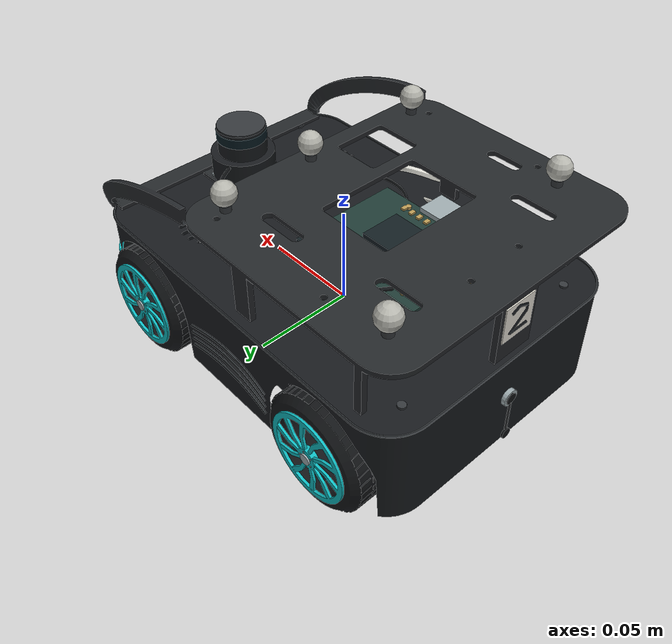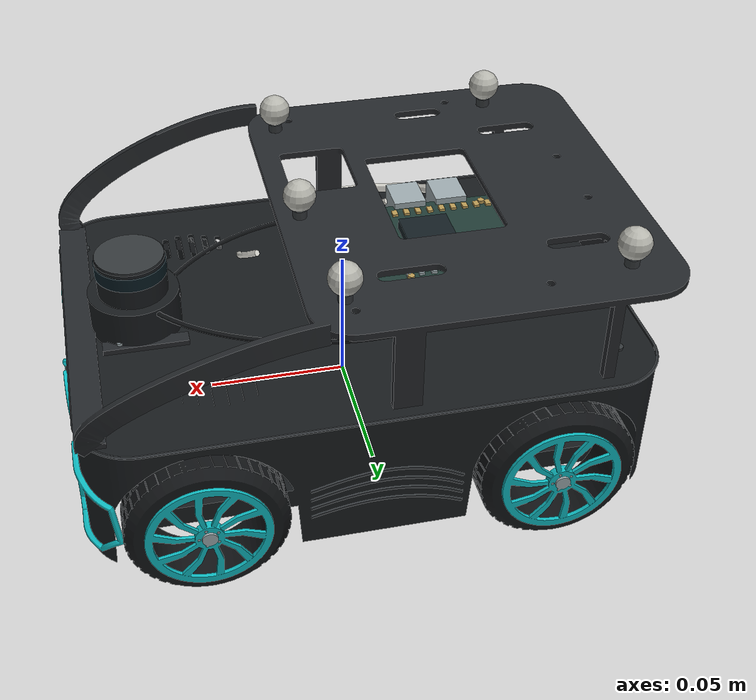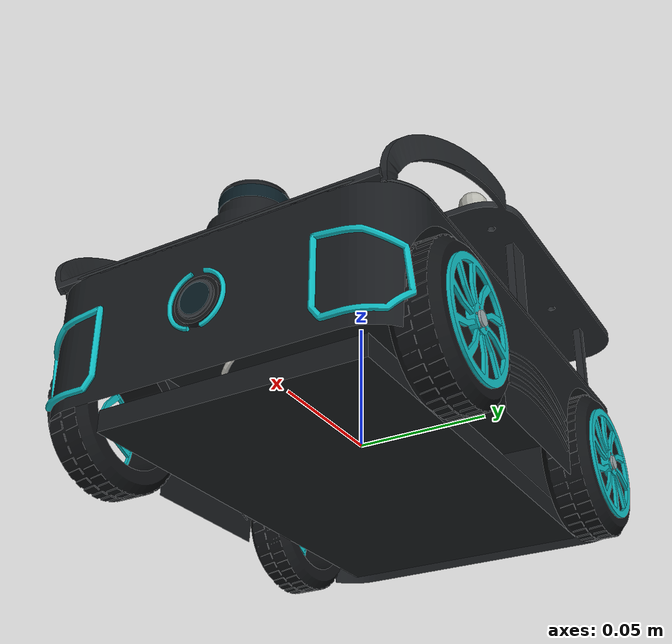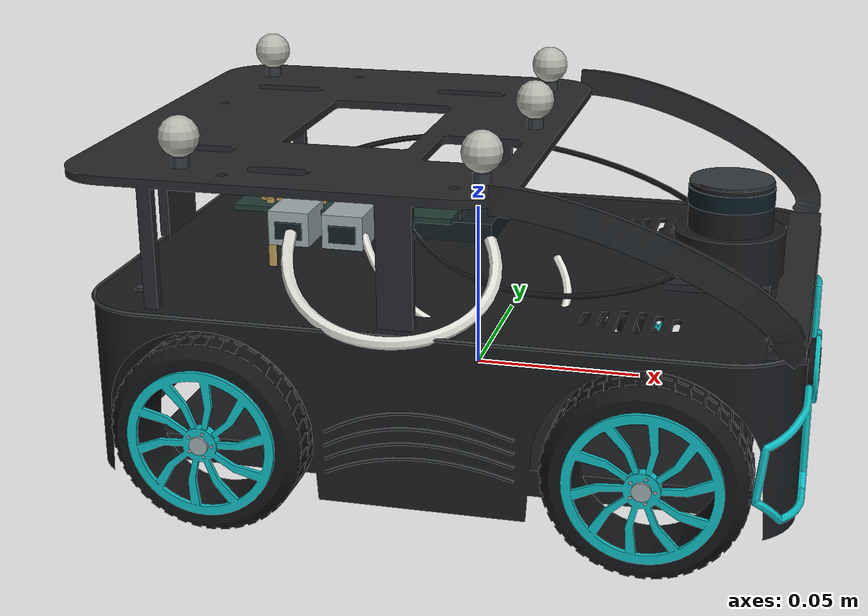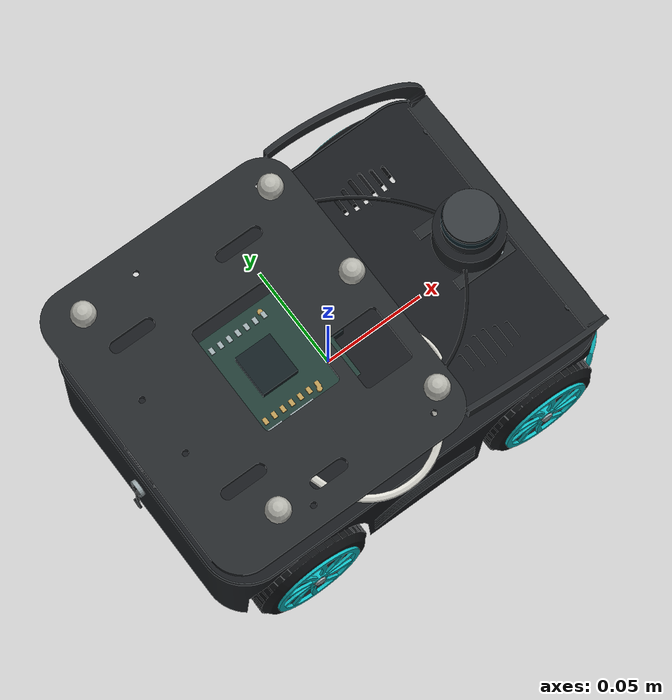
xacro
<?xml version='1.0' encoding='utf-8'?>
<robot name="dongfeng_car" xmlns:xacro="http://www.ros.org/wiki/xacro">
  <xacro:arg name="driving_mode" default="fast"/>
  <xacro:property name="drive_limit" value="0.40"/>
  <!--Generated by scripts/generate_vehicle.py. X forward, Y left, Z up. Camera, lidar and IMU publish through Gazebo Sensors.-->
  <link name="base_link">
    <visual name="base_shell">
      <origin xyz="0 0 0" rpy="0 0 0" />
      <geometry>
        <mesh filename="package://dongfeng_description/meshes/base_shell.obj" />
      </geometry>
      <material name="vehicle_shell">
        <color rgba="0.0901960784 0.101960784 0.11372549 1" />
      </material>
    </visual>
    <visual name="base_edge">
      <origin xyz="0 0 0" rpy="0 0 0" />
      <geometry>
        <mesh filename="package://dongfeng_description/meshes/base_edge.obj" />
      </geometry>
      <material name="vehicle_edge">
        <color rgba="0.203921569 0.219607843 0.231372549 1" />
      </material>
    </visual>
    <visual name="base_teal">
      <origin xyz="0 0 0" rpy="0 0 0" />
      <geometry>
        <mesh filename="package://dongfeng_description/meshes/base_teal.obj" />
      </geometry>
      <material name="vehicle_teal">
        <color rgba="0.0549019608 0.729411765 0.752941176 1" />
      </material>
    </visual>
    <visual name="base_silver">
      <origin xyz="0 0 0" rpy="0 0 0" />
      <geometry>
        <mesh filename="package://dongfeng_description/meshes/base_silver.obj" />
      </geometry>
      <material name="vehicle_silver">
        <color rgba="0.611764706 0.662745098 0.678431373 1" />
      </material>
    </visual>
    <visual name="base_rubber">
      <origin xyz="0 0 0" rpy="0 0 0" />
      <geometry>
        <mesh filename="package://dongfeng_description/meshes/base_rubber.obj" />
      </geometry>
      <material name="vehicle_rubber">
        <color rgba="0.0666666667 0.0745098039 0.0823529412 1" />
      </material>
    </visual>
    <visual name="base_plate">
      <origin xyz="0 0 0" rpy="0 0 0" />
      <geometry>
        <mesh filename="package://dongfeng_description/meshes/base_plate.obj" />
      </geometry>
      <material name="vehicle_plate">
        <color rgba="0.141176471 0.152941176 0.164705882 1" />
      </material>
    </visual>
    <visual name="base_marker">
      <origin xyz="0 0 0" rpy="0 0 0" />
      <geometry>
        <mesh filename="package://dongfeng_description/meshes/base_marker.obj" />
      </geometry>
      <material name="vehicle_marker">
        <color rgba="0.709803922 0.709803922 0.678431373 1" />
      </material>
    </visual>
    <visual name="base_board">
      <origin xyz="0 0 0" rpy="0 0 0" />
      <geometry>
        <mesh filename="package://dongfeng_description/meshes/base_board.obj" />
      </geometry>
      <material name="vehicle_board">
        <color rgba="0.125490196 0.231372549 0.207843137 1" />
      </material>
    </visual>
    <visual name="base_chip">
      <origin xyz="0 0 0" rpy="0 0 0" />
      <geometry>
        <mesh filename="package://dongfeng_description/meshes/base_chip.obj" />
      </geometry>
      <material name="vehicle_chip">
        <color rgba="0.0745098039 0.117647059 0.133333333 1" />
      </material>
    </visual>
    <visual name="base_gold">
      <origin xyz="0 0 0" rpy="0 0 0" />
      <geometry>
        <mesh filename="package://dongfeng_description/meshes/base_gold.obj" />
      </geometry>
      <material name="vehicle_gold">
        <color rgba="0.725490196 0.6 0.329411765 1" />
      </material>
    </visual>
    <visual name="base_cable_white">
      <origin xyz="0 0 0" rpy="0 0 0" />
      <geometry>
        <mesh filename="package://dongfeng_description/meshes/base_cable_white.obj" />
      </geometry>
      <material name="vehicle_cable_white">
        <color rgba="0.866666667 0.862745098 0.831372549 1" />
      </material>
    </visual>
    <visual name="base_label">
      <origin xyz="0 0 0" rpy="0 0 0" />
      <geometry>
        <mesh filename="package://dongfeng_description/meshes/base_label.obj" />
      </geometry>
      <material name="vehicle_label">
        <color rgba="0.901960784 0.88627451 0.839215686 1" />
      </material>
    </visual>
    <collision name="body_envelope">
      <origin xyz="0 0 0.009" rpy="0 0 0" />
      <geometry>
        <box size="0.194 0.136 0.05" />
      </geometry>
    </collision>
    <collision name="upper_platform">
      <origin xyz="-0.039 0 0.07275" rpy="0 0 0" />
      <geometry>
        <box size="0.126 0.146 0.0025" />
      </geometry>
    </collision>
    <collision name="support_-1">
      <origin xyz="-0.008 -0.063 0.053" rpy="0 0 0" />
      <geometry>
        <box size="0.01 0.003 0.038" />
      </geometry>
    </collision>
    <collision name="support_1">
      <origin xyz="-0.008 0.063 0.053" rpy="0 0 0" />
      <geometry>
        <box size="0.01 0.003 0.038" />
      </geometry>
    </collision>
    <inertial>
      <origin xyz="0 0 0.021" rpy="0 0 0" />
      <mass value="1.2" />
      <inertia ixx="0.0029600000000000004" ixy="0" ixz="0" iyy="0.005000000000000001" iyz="0" izz="0.005960000000000001" />
    </inertial>
  </link>
  <link name="wheel_left_link">
    <visual name="wheel_left_rubber">
      <origin xyz="0 0 0" rpy="0 0 0" />
      <geometry>
        <mesh filename="package://dongfeng_description/meshes/wheel_left_rubber.obj" />
      </geometry>
      <material name="vehicle_rubber">
        <color rgba="0.0666666667 0.0745098039 0.0823529412 1" />
      </material>
    </visual>
    <visual name="wheel_left_teal">
      <origin xyz="0 0 0" rpy="0 0 0" />
      <geometry>
        <mesh filename="package://dongfeng_description/meshes/wheel_left_teal.obj" />
      </geometry>
      <material name="vehicle_teal">
        <color rgba="0.0549019608 0.729411765 0.752941176 1" />
      </material>
    </visual>
    <visual name="wheel_left_silver">
      <origin xyz="0 0 0" rpy="0 0 0" />
      <geometry>
        <mesh filename="package://dongfeng_description/meshes/wheel_left_silver.obj" />
      </geometry>
      <material name="vehicle_silver">
        <color rgba="0.611764706 0.662745098 0.678431373 1" />
      </material>
    </visual>
    <collision>
      <origin xyz="0 0 0" rpy="-1.57079633 0 0" />
      <geometry>
        <cylinder radius="0.028" length="0.018" />
      </geometry>
    </collision>
    <inertial>
      <origin xyz="0 0 0" rpy="0 0 0" />
      <mass value="0.06" />
      <inertia ixx="1.3380000000000002e-05" ixy="0" ixz="0" iyy="2.3520000000000002e-05" iyz="0" izz="1.3380000000000002e-05" />
    </inertial>
  </link>
  <joint name="wheel_left_joint" type="continuous">
    <parent link="base_link" />
    <child link="wheel_left_link" />
    <origin xyz="-0.061 0.066 0" rpy="0 0 0" />
    <axis xyz="0 1 0" />
  </joint>
  <gazebo reference="wheel_left_link">
    <mu1>1.0</mu1>
    <mu2>1.0</mu2>
    <kp>1000000</kp>
    <kd>100</kd>
    <fdir1>0 0 1</fdir1>
  </gazebo>
  <link name="wheel_left_front_link">
    <visual name="wheel_left_rubber">
      <origin xyz="0 0 0" rpy="0 0 0" />
      <geometry>
        <mesh filename="package://dongfeng_description/meshes/wheel_left_rubber.obj" />
      </geometry>
      <material name="vehicle_rubber">
        <color rgba="0.0666666667 0.0745098039 0.0823529412 1" />
      </material>
    </visual>
    <visual name="wheel_left_teal">
      <origin xyz="0 0 0" rpy="0 0 0" />
      <geometry>
        <mesh filename="package://dongfeng_description/meshes/wheel_left_teal.obj" />
      </geometry>
      <material name="vehicle_teal">
        <color rgba="0.0549019608 0.729411765 0.752941176 1" />
      </material>
    </visual>
    <visual name="wheel_left_silver">
      <origin xyz="0 0 0" rpy="0 0 0" />
      <geometry>
        <mesh filename="package://dongfeng_description/meshes/wheel_left_silver.obj" />
      </geometry>
      <material name="vehicle_silver">
        <color rgba="0.611764706 0.662745098 0.678431373 1" />
      </material>
    </visual>
    <collision>
      <origin xyz="0 0 0" rpy="-1.57079633 0 0" />
      <geometry>
        <cylinder radius="0.028" length="0.018" />
      </geometry>
    </collision>
    <inertial>
      <origin xyz="0 0 0" rpy="0 0 0" />
      <mass value="0.06" />
      <inertia ixx="1.3380000000000002e-05" ixy="0" ixz="0" iyy="2.3520000000000002e-05" iyz="0" izz="1.3380000000000002e-05" />
    </inertial>
  </link>
  <joint name="wheel_left_front_joint" type="continuous">
    <parent link="base_link" />
    <child link="wheel_left_front_link" />
    <origin xyz="0.061 0.066 0" rpy="0 0 0" />
    <axis xyz="0 1 0" />
  </joint>
  <gazebo reference="wheel_left_front_link">
    <mu1>1.0</mu1>
    <mu2>1.0</mu2>
    <kp>1000000</kp>
    <kd>100</kd>
    <fdir1>0 0 1</fdir1>
  </gazebo>
  <link name="wheel_right_link">
    <visual name="wheel_right_rubber">
      <origin xyz="0 0 0" rpy="0 0 0" />
      <geometry>
        <mesh filename="package://dongfeng_description/meshes/wheel_right_rubber.obj" />
      </geometry>
      <material name="vehicle_rubber">
        <color rgba="0.0666666667 0.0745098039 0.0823529412 1" />
      </material>
    </visual>
    <visual name="wheel_right_teal">
      <origin xyz="0 0 0" rpy="0 0 0" />
      <geometry>
        <mesh filename="package://dongfeng_description/meshes/wheel_right_teal.obj" />
      </geometry>
      <material name="vehicle_teal">
        <color rgba="0.0549019608 0.729411765 0.752941176 1" />
      </material>
    </visual>
    <visual name="wheel_right_silver">
      <origin xyz="0 0 0" rpy="0 0 0" />
      <geometry>
        <mesh filename="package://dongfeng_description/meshes/wheel_right_silver.obj" />
      </geometry>
      <material name="vehicle_silver">
        <color rgba="0.611764706 0.662745098 0.678431373 1" />
      </material>
    </visual>
    <collision>
      <origin xyz="0 0 0" rpy="-1.57079633 0 0" />
      <geometry>
        <cylinder radius="0.028" length="0.018" />
      </geometry>
    </collision>
    <inertial>
      <origin xyz="0 0 0" rpy="0 0 0" />
      <mass value="0.06" />
      <inertia ixx="1.3380000000000002e-05" ixy="0" ixz="0" iyy="2.3520000000000002e-05" iyz="0" izz="1.3380000000000002e-05" />
    </inertial>
  </link>
  <joint name="wheel_right_joint" type="continuous">
    <parent link="base_link" />
    <child link="wheel_right_link" />
    <origin xyz="-0.061 -0.066 0" rpy="0 0 0" />
    <axis xyz="0 1 0" />
  </joint>
  <gazebo reference="wheel_right_link">
    <mu1>1.0</mu1>
    <mu2>1.0</mu2>
    <kp>1000000</kp>
    <kd>100</kd>
    <fdir1>0 0 1</fdir1>
  </gazebo>
  <link name="wheel_right_front_link">
    <visual name="wheel_right_rubber">
      <origin xyz="0 0 0" rpy="0 0 0" />
      <geometry>
        <mesh filename="package://dongfeng_description/meshes/wheel_right_rubber.obj" />
      </geometry>
      <material name="vehicle_rubber">
        <color rgba="0.0666666667 0.0745098039 0.0823529412 1" />
      </material>
    </visual>
    <visual name="wheel_right_teal">
      <origin xyz="0 0 0" rpy="0 0 0" />
      <geometry>
        <mesh filename="package://dongfeng_description/meshes/wheel_right_teal.obj" />
      </geometry>
      <material name="vehicle_teal">
        <color rgba="0.0549019608 0.729411765 0.752941176 1" />
      </material>
    </visual>
    <visual name="wheel_right_silver">
      <origin xyz="0 0 0" rpy="0 0 0" />
      <geometry>
        <mesh filename="package://dongfeng_description/meshes/wheel_right_silver.obj" />
      </geometry>
      <material name="vehicle_silver">
        <color rgba="0.611764706 0.662745098 0.678431373 1" />
      </material>
    </visual>
    <collision>
      <origin xyz="0 0 0" rpy="-1.57079633 0 0" />
      <geometry>
        <cylinder radius="0.028" length="0.018" />
      </geometry>
    </collision>
    <inertial>
      <origin xyz="0 0 0" rpy="0 0 0" />
      <mass value="0.06" />
      <inertia ixx="1.3380000000000002e-05" ixy="0" ixz="0" iyy="2.3520000000000002e-05" iyz="0" izz="1.3380000000000002e-05" />
    </inertial>
  </link>
  <joint name="wheel_right_front_joint" type="continuous">
    <parent link="base_link" />
    <child link="wheel_right_front_link" />
    <origin xyz="0.061 -0.066 0" rpy="0 0 0" />
    <axis xyz="0 1 0" />
  </joint>
  <gazebo reference="wheel_right_front_link">
    <mu1>1.0</mu1>
    <mu2>1.0</mu2>
    <kp>1000000</kp>
    <kd>100</kd>
    <fdir1>0 0 1</fdir1>
  </gazebo>
  <link name="lidar_link">
    <visual name="lidar_shell">
      <origin xyz="0 0 0" rpy="0 0 0" />
      <geometry>
        <mesh filename="package://dongfeng_description/meshes/lidar_shell.obj" />
      </geometry>
      <material name="vehicle_shell">
        <color rgba="0.0901960784 0.101960784 0.11372549 1" />
      </material>
    </visual>
    <visual name="lidar_lens">
      <origin xyz="0 0 0" rpy="0 0 0" />
      <geometry>
        <mesh filename="package://dongfeng_description/meshes/lidar_lens.obj" />
      </geometry>
      <material name="vehicle_lens">
        <color rgba="0.031372549 0.105882353 0.133333333 1" />
      </material>
    </visual>
    <visual name="lidar_edge">
      <origin xyz="0 0 0" rpy="0 0 0" />
      <geometry>
        <mesh filename="package://dongfeng_description/meshes/lidar_edge.obj" />
      </geometry>
      <material name="vehicle_edge">
        <color rgba="0.203921569 0.219607843 0.231372549 1" />
      </material>
    </visual>
    <visual name="lidar_plate">
      <origin xyz="0 0 0" rpy="0 0 0" />
      <geometry>
        <mesh filename="package://dongfeng_description/meshes/lidar_plate.obj" />
      </geometry>
      <material name="vehicle_plate">
        <color rgba="0.141176471 0.152941176 0.164705882 1" />
      </material>
    </visual>
    <visual name="lidar_silver">
      <origin xyz="0 0 0" rpy="0 0 0" />
      <geometry>
        <mesh filename="package://dongfeng_description/meshes/lidar_silver.obj" />
      </geometry>
      <material name="vehicle_silver">
        <color rgba="0.611764706 0.662745098 0.678431373 1" />
      </material>
    </visual>
    <collision name="lidar_housing">
      <origin xyz="0 0 -0.01" rpy="0 0 0" />
      <geometry>
        <cylinder radius="0.016" length="0.03" />
      </geometry>
    </collision>
    <inertial>
      <origin xyz="0 0 -0.01" rpy="0 0 0" />
      <mass value="0.05" />
      <inertia ixx="8.016666666666667e-06" ixy="0" ixz="0" iyy="8.016666666666667e-06" iyz="0" izz="8.533333333333334e-06" />
    </inertial>
  </link>
  <joint name="lidar_joint" type="fixed">
    <parent link="base_link" />
    <child link="lidar_link" />
    <origin xyz="0.075 0 0.059" rpy="0 0 0" />
  </joint>
  <link name="camera_link">
    <visual name="camera_rubber">
      <origin xyz="0 0 0" rpy="0 0 0" />
      <geometry>
        <mesh filename="package://dongfeng_description/meshes/camera_rubber.obj" />
      </geometry>
      <material name="vehicle_rubber">
        <color rgba="0.0666666667 0.0745098039 0.0823529412 1" />
      </material>
    </visual>
    <visual name="camera_edge">
      <origin xyz="0 0 0" rpy="0 0 0" />
      <geometry>
        <mesh filename="package://dongfeng_description/meshes/camera_edge.obj" />
      </geometry>
      <material name="vehicle_edge">
        <color rgba="0.203921569 0.219607843 0.231372549 1" />
      </material>
    </visual>
    <visual name="camera_lens">
      <origin xyz="0 0 0" rpy="0 0 0" />
      <geometry>
        <mesh filename="package://dongfeng_description/meshes/camera_lens.obj" />
      </geometry>
      <material name="vehicle_lens">
        <color rgba="0.031372549 0.105882353 0.133333333 1" />
      </material>
    </visual>
    <visual name="camera_teal">
      <origin xyz="0 0 0" rpy="0 0 0" />
      <geometry>
        <mesh filename="package://dongfeng_description/meshes/camera_teal.obj" />
      </geometry>
      <material name="vehicle_teal">
        <color rgba="0.0549019608 0.729411765 0.752941176 1" />
      </material>
    </visual>
    <collision name="camera_housing">
      <origin xyz="0 0 0" rpy="0 1.57079633 0" />
      <geometry>
        <cylinder radius="0.009" length="0.005" />
      </geometry>
    </collision>
    <inertial>
      <origin xyz="0 0 0" rpy="0 0 0" />
      <mass value="0.012" />
      <inertia ixx="6.48e-07" ixy="0" ixz="0" iyy="3.4899999999999996e-07" iyz="0" izz="3.4899999999999996e-07" />
    </inertial>
  </link>
  <joint name="camera_joint" type="fixed">
    <parent link="base_link" />
    <child link="camera_link" />
    <origin xyz="0.102 0 0.008" rpy="0 0 0" />
  </joint>
  <link name="camera_optical_frame" />
  <joint name="camera_optical_joint" type="fixed">
    <parent link="camera_link" />
    <child link="camera_optical_frame" />
    <origin xyz="0.0015 0 0" rpy="-1.57079633 0 -1.57079633" />
  </joint>
  <gazebo reference="camera_link">
    <sensor name="front_camera" type="camera">
      <pose>0.007 0 0 0 0 0</pose>
      <topic>/camera/image_raw</topic>
      <always_on>true</always_on>
      <update_rate>20</update_rate>
      <gz_frame_id>camera_optical_frame</gz_frame_id>
      <camera>
        <horizontal_fov>1.8</horizontal_fov>
        <image>
          <width>640</width>
          <height>480</height>
          <format>R8G8B8</format>
        </image>
        <clip>
          <near>0.005</near>
          <far>10</far>
        </clip>
        <camera_info_topic>/camera/camera_info</camera_info_topic>
      </camera>
    </sensor>
  </gazebo>
  <gazebo reference="lidar_link">
    <sensor name="lidar" type="gpu_lidar">
      <pose>0 0 0.006 0 0 0</pose>
      <topic>/scan</topic>
      <always_on>true</always_on>
      <update_rate>10</update_rate>
      <gz_frame_id>lidar_link</gz_frame_id>
      <lidar>
        <scan>
          <horizontal>
            <samples>720</samples>
            <resolution>1</resolution>
            <min_angle>-3.141592653589793</min_angle>
            <max_angle>3.141592653589793</max_angle>
          </horizontal>
        </scan>
        <range>
          <min>0.03</min>
          <max>5</max>
          <resolution>0.005</resolution>
        </range>
      </lidar>
    </sensor>
  </gazebo>
  <gazebo reference="base_link">
    <sensor name="imu" type="imu">
      <topic>/imu/data</topic>
      <always_on>true</always_on>
      <update_rate>50</update_rate>
      <gz_frame_id>base_link</gz_frame_id>
      <imu />
    </sensor>
  </gazebo>
  <gazebo>
    <plugin filename="gz-sim-diff-drive-system" name="gz::sim::systems::DiffDrive">
      <left_joint>wheel_left_joint</left_joint>
      <left_joint>wheel_left_front_joint</left_joint>
      <right_joint>wheel_right_joint</right_joint>
      <right_joint>wheel_right_front_joint</right_joint>
      <wheel_separation>0.132</wheel_separation>
      <wheel_radius>0.028</wheel_radius>
      <topic>/cmd_vel</topic>
      <odom_topic>/odom</odom_topic>
      <tf_topic>/tf</tf_topic>
      <frame_id>odom</frame_id>
      <child_frame_id>base_link</child_frame_id>
      <odom_publish_frequency>50</odom_publish_frequency>
      <min_linear_velocity>-${drive_limit}</min_linear_velocity>
      <max_linear_velocity>${drive_limit}</max_linear_velocity>
      <min_angular_velocity>-1.2</min_angular_velocity>
      <max_angular_velocity>1.2</max_angular_velocity>
      <min_linear_acceleration>-0.6</min_linear_acceleration>
      <max_linear_acceleration>0.6</max_linear_acceleration>
      <min_angular_acceleration>-2.4</min_angular_acceleration>
      <max_angular_acceleration>2.4</max_angular_acceleration>
    </plugin>
    <plugin filename="gz-sim-joint-state-publisher-system" name="gz::sim::systems::JointStatePublisher">
      <topic>/joint_states</topic>
      <update_rate>50</update_rate>
    </plugin>
    <plugin filename="gz-sim-wheel-slip-system" name="gz::sim::systems::WheelSlip">
      <wheel link_name="wheel_left_link">
        <wheel_radius>0.028</wheel_radius>
        <wheel_normal_force>3.6836550000000003</wheel_normal_force>
        <slip_compliance_lateral>0.5</slip_compliance_lateral>
        <slip_compliance_longitudinal>0</slip_compliance_longitudinal>
      </wheel>
      <wheel link_name="wheel_left_front_link">
        <wheel_radius>0.028</wheel_radius>
        <wheel_normal_force>3.6836550000000003</wheel_normal_force>
        <slip_compliance_lateral>0.5</slip_compliance_lateral>
        <slip_compliance_longitudinal>0</slip_compliance_longitudinal>
      </wheel>
      <wheel link_name="wheel_right_link">
        <wheel_radius>0.028</wheel_radius>
        <wheel_normal_force>3.6836550000000003</wheel_normal_force>
        <slip_compliance_lateral>0.5</slip_compliance_lateral>
        <slip_compliance_longitudinal>0</slip_compliance_longitudinal>
      </wheel>
      <wheel link_name="wheel_right_front_link">
        <wheel_radius>0.028</wheel_radius>
        <wheel_normal_force>3.6836550000000003</wheel_normal_force>
        <slip_compliance_lateral>0.5</slip_compliance_lateral>
        <slip_compliance_longitudinal>0</slip_compliance_longitudinal>
      </wheel>
    </plugin>
  </gazebo>
</robot>
